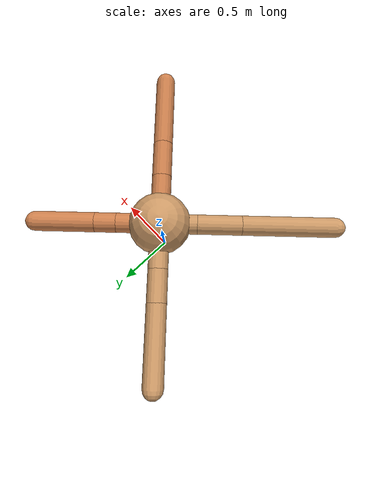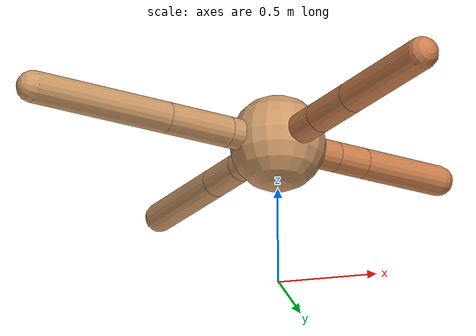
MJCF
<mujoco model="ant">
  <compiler angle="degree" coordinate="local" inertiafromgeom="true" />
  <option integrator="RK4" timestep="0.01" />
  <custom>
    <numeric data="0.0 0.0 0.55 1.0 0.0 0.0 0.0 0.0 1.0 0.0 -1.0 0.0 -1.0 0.0 1.0" name="init_qpos" />
  </custom>
  <default>
    <joint armature="1" damping="1" limited="true" />
    <geom conaffinity="0" condim="3" density="5.0" friction="1.5 0.1 0.1" margin="0.01" rgba="0.8 0.6 0.4 1" />
  </default>
  <worldbody>
    <body name="torso" pos="0 0 0.75">
      <geom name="torso_geom" pos="0 0 0" size="0.25" type="sphere" />

      <body name="front_left_leg" pos="0 0 0">
        <geom fromto="0.0 0.0 0.0 0.24499062946163297 0.24499062946163297 0.0" name="aux_1_geom" size="0.08" type="capsule" rgba=".8 .5 .3 1" />
        <body name="aux_1" pos="0.24499062946163297 0.24499062946163297 0.0">
          <joint axis="0 0 1" name="hip_1" pos="0.0 0.0 0.0" range="-40 40" type="hinge" />
          <geom fromto="0.0 0.0 0.0 0.12166583724821012 0.12166583724821012 0.0" name="left_leg_geom" size="0.08" type="capsule" rgba=".8 .5 .3 1" />
          <body pos="0.12166583724821012 0.12166583724821012 0.0" name="front_left_foot">
            <joint axis="-1 1 0" name="ankle_1" pos="0.0 0.0 0.0" range="30 100" type="hinge" />
            <geom fromto="0.0 0.0 0.0 0.33773961333936153 0.33773961333936153 0.0" name="left_ankle_geom" size="0.08" type="capsule" rgba=".8 .5 .3 1" />
          </body>
        </body>
      </body>
      <body name="front_right_leg" pos="0 0 0">
        <geom fromto="0.0 0.0 0.0 -0.258797211058487 0.258797211058487 0.0" name="aux_2_geom" size="0.08" type="capsule" />
        <body name="aux_2" pos="-0.258797211058487 0.258797211058487 0.0">
          <joint axis="0 0 1" name="hip_2" pos="0.0 0.0 0.0" range="-40 40" type="hinge" />
          <geom fromto="0.0 0.0 0.0 -0.18197645139533486 0.18197645139533486 0.0" name="right_leg_geom" size="0.08" type="capsule" />
          <body pos="-0.18197645139533486 0.18197645139533486 0.0" name="front_right_foot">
            <joint axis="1 1 0" name="ankle_2" pos="0.0 0.0 0.0" range="-100 -30" type="hinge" />
            <geom fromto="0.0 0.0 0.0 -0.42886304238449907 0.42886304238449907 0.0" name="right_ankle_geom" size="0.08" type="capsule" />
          </body>
        </body>
      </body>
      <body name="left_back_leg" pos="0 0 0">
        <geom fromto="0.0 0.0 0.0 -0.21117281917588548 -0.21117281917588548 0.0" name="aux_3_geom" size="0.08" type="capsule" />
        <body name="aux_3" pos="-0.21117281917588548 -0.21117281917588548 0.0">
          <joint axis="0 0 1" name="hip_3" pos="0.0 0.0 0.0" range="-40 40" type="hinge" />
          <geom fromto="0.0 0.0 0.0 -0.2514273474367647 -0.2514273474367647 0.0" name="back_leg_geom" size="0.08" type="capsule" />
          <body pos="-0.2514273474367647 -0.2514273474367647 0.0" name="left_back_foot">
            <joint axis="-1 1 0" name="ankle_3" pos="0.0 0.0 0.0" range="-100 -30" type="hinge" />
            <geom fromto="0.0 0.0 0.0 -0.5270508609026436 -0.5270508609026436 0.0" name="third_ankle_geom" size="0.08" type="capsule" />
          </body>
        </body>
      </body>
      <body name="right_back_leg" pos="0 0 0">
        <geom fromto="0.0 0.0 0.0 0.283068945278148 -0.283068945278148 0.0" name="aux_4_geom" size="0.08" type="capsule" rgba=".8 .5 .3 1" />
        <body name="aux_4" pos="0.283068945278148 -0.283068945278148 0.0">
          <joint axis="0 0 1" name="hip_4" pos="0.0 0.0 0.0" range="-40 40" type="hinge" />
          <geom fromto="0.0 0.0 0.0 0.20842303216832825 -0.20842303216832825 0.0" name="rightback_leg_geom" size="0.08" type="capsule" rgba=".8 .5 .3 1" />
          <body pos="0.20842303216832825 -0.20842303216832825 0.0" name="right_back_foot">
            <joint axis="1 1 0" name="ankle_4" pos="0.0 0.0 0.0" range="30 100" type="hinge" />
            <geom fromto="0.0 0.0 0.0 0.42412339438722846 -0.42412339438722846 0.0" name="fourth_ankle_geom" size="0.08" type="capsule" rgba=".8 .5 .3 1" />
          </body>
        </body>
      </body>
    </body>
  </worldbody>
  <actuator>
    <motor ctrllimited="true" ctrlrange="-1.0 1.0" joint="hip_4" gear="150" />
    <motor ctrllimited="true" ctrlrange="-1.0 1.0" joint="ankle_4" gear="150" />
    <motor ctrllimited="true" ctrlrange="-1.0 1.0" joint="hip_1" gear="150" />
    <motor ctrllimited="true" ctrlrange="-1.0 1.0" joint="ankle_1" gear="150" />
    <motor ctrllimited="true" ctrlrange="-1.0 1.0" joint="hip_2" gear="150" />
    <motor ctrllimited="true" ctrlrange="-1.0 1.0" joint="ankle_2" gear="150" />
    <motor ctrllimited="true" ctrlrange="-1.0 1.0" joint="hip_3" gear="150" />
    <motor ctrllimited="true" ctrlrange="-1.0 1.0" joint="ankle_3" gear="150" />
  </actuator>
</mujoco>
